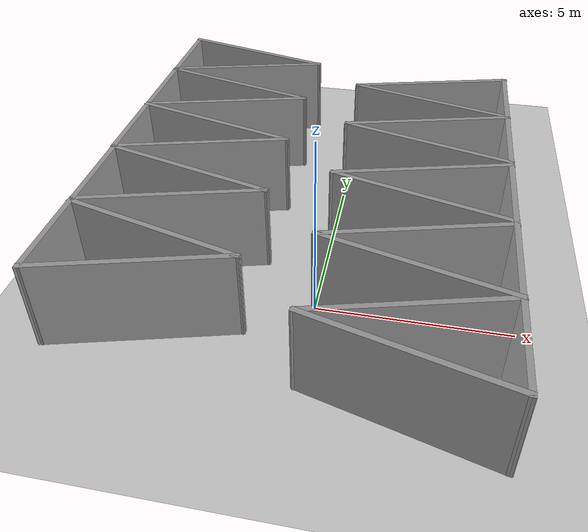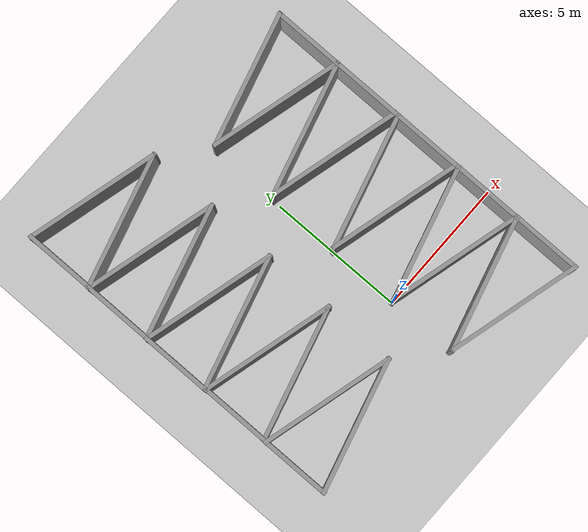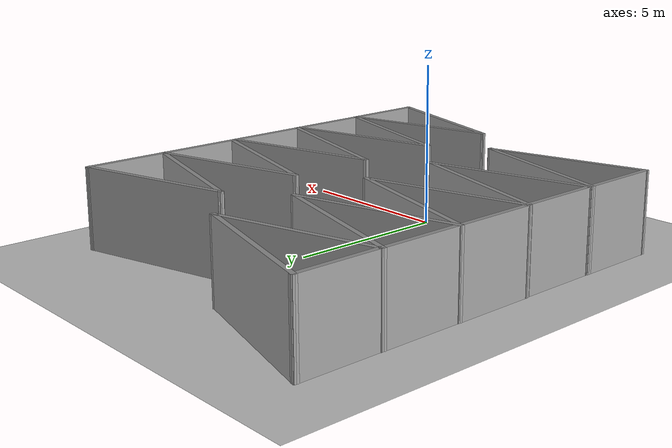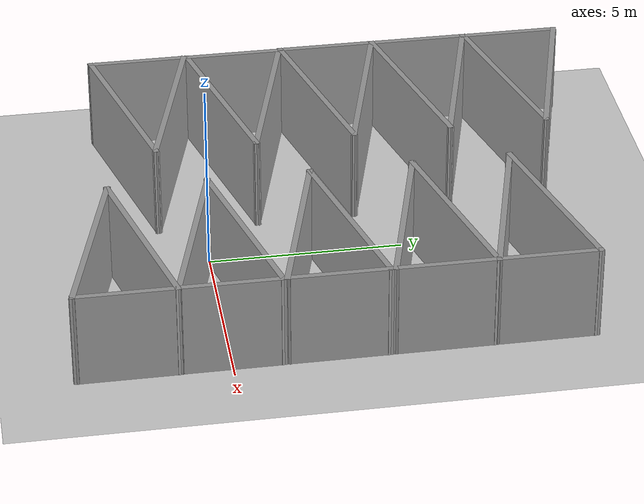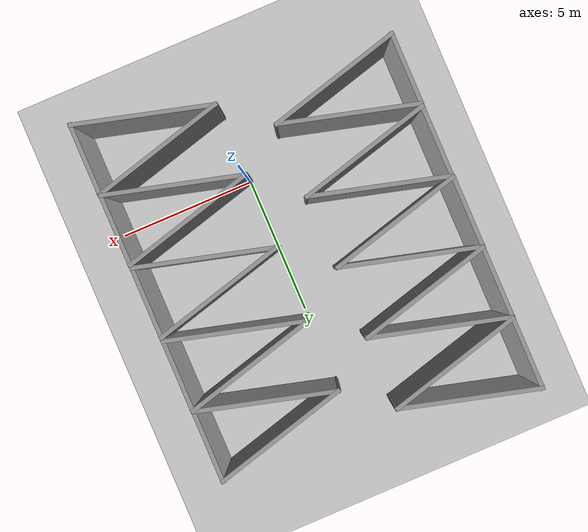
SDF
<sdf version="1.6">
 <world name="default">
  <light name="sun" type="directional">
   <pose>0 0 10 0 -0 0</pose>
   <diffuse>0.8 0.8 0.8 1</diffuse>
   <specular>0.2 0.2 0.2 1</specular>
   <attenuation>
    <range>1000</range>
    <constant>0.9</constant>
    <linear>0.01</linear>
    <quadratic>0.001</quadratic>
   </attenuation>
   <direction>-0.5 0.1 -0.9</direction>
  </light>
  <model name="ground_plane">
   <static>1</static>
   <link name="link">
    <collision name="collision">
     <geometry><plane><normal>0 0 1</normal><size>100 100</size></plane></geometry>
     <surface>
      <contact><collide_bitmask>65535</collide_bitmask></contact>
      <friction><ode><mu>100</mu><mu2>50</mu2></ode></friction>
     </surface>
    </collision>
    <visual name="visual">
     <cast_shadows>0</cast_shadows>
     <geometry><plane><normal>0 0 1</normal><size>100 100</size></plane></geometry>
     <material>
      <script><uri>file://media/materials/scripts/gazebo.material</uri><name>Gazebo/Grey</name></script>
     </material>
    </visual>
   </link>
  </model>
  <gravity>0 0 -9.8</gravity>
  <magnetic_field>6e-06 2.3e-05 -4.2e-05</magnetic_field>
  <atmosphere type="adiabatic"/>
  <physics name="default_physics" default="0" type="ode">
   <max_step_size>0.001</max_step_size>
   <real_time_factor>1</real_time_factor>
   <real_time_update_rate>1000</real_time_update_rate>
  </physics>
  <scene><ambient>0.4 0.4 0.4 1</ambient><background>0.7 0.7 0.7 1</background><shadows>1</shadows></scene>
  <audio><device>default</device></audio>
  <spherical_coordinates>
   <surface_model>EARTH_WGS84</surface_model>
   <latitude_deg>0</latitude_deg>
   <longitude_deg>0</longitude_deg>
   <elevation>0</elevation>
   <heading_deg>0</heading_deg>
  </spherical_coordinates>
  <model name="tri_30deg_5m">
   <pose>2.34237 -0 0 0 -0 0</pose>
   <link name="Wall_46">
    <collision name="Wall_46_Collision">
     <geometry><box><size>5 0.15 2.5</size></box></geometry>
     <pose>0 0 1.25 0 -0 0</pose>
    </collision>
    <visual name="Wall_46_Visual">
     <pose>0 0 1.25 0 -0 0</pose>
     <geometry><box><size>5 0.15 2.5</size></box></geometry>
     <material>
      <script><uri>file://media/materials/scripts/gazebo.material</uri><name>Gazebo/Grey</name></script>
      <ambient>1 1 1 1</ambient>
     </material>
     <meta><layer>0</layer></meta>
    </visual>
    <pose>-0 0.627636 0 0 -0 0.261799</pose>
   </link>
   <link name="Wall_50">
    <collision name="Wall_50_Collision">
     <geometry><box><size>5 0.15 2.5</size></box></geometry>
     <pose>0 0 1.25 0 -0 0</pose>
    </collision>
    <visual name="Wall_50_Visual">
     <pose>0 0 1.25 0 -0 0</pose>
     <geometry><box><size>5 0.15 2.5</size></box></geometry>
     <material>
      <script><uri>file://media/materials/scripts/gazebo.material</uri><name>Gazebo/Grey</name></script>
      <ambient>1 1 1 1</ambient>
     </material>
     <meta><layer>0</layer></meta>
    </visual>
    <pose>-0 -0.627636 0 0 -0 -0.261799</pose>
   </link>
   <link name="Wall_54">
    <collision name="Wall_54_Collision">
     <geometry><box><size>2.66054 0.15 2.5</size></box></geometry>
     <pose>0 0 1.25 0 -0 0</pose>
    </collision>
    <visual name="Wall_54_Visual">
     <pose>0 0 1.25 0 -0 0</pose>
     <geometry><box><size>2.66054 0.15 2.5</size></box></geometry>
     <material>
      <script><uri>file://media/materials/scripts/gazebo.material</uri><name>Gazebo/Grey</name></script>
      <ambient>1 1 1 1</ambient>
     </material>
     <meta><layer>0</layer></meta>
    </visual>
    <pose>2.34237 -0 0 0 -0 -1.5708</pose>
   </link>
   <static>1</static>
  </model>
  <model name="tri_30deg_5m_0">
   <pose>2.33445 2.61578 0 0 -0 0</pose>
   <link name="Wall_46">
    <collision name="Wall_46_Collision">
     <geometry><box><size>5 0.15 2.5</size></box></geometry>
     <pose>0 0 1.25 0 -0 0</pose>
    </collision>
    <visual name="Wall_46_Visual">
     <pose>0 0 1.25 0 -0 0</pose>
     <geometry><box><size>5 0.15 2.5</size></box></geometry>
     <material>
      <script><uri>file://media/materials/scripts/gazebo.material</uri><name>Gazebo/Grey</name></script>
      <ambient>1 1 1 1</ambient>
     </material>
     <meta><layer>0</layer></meta>
    </visual>
    <pose>-0 0.627636 0 0 -0 0.261799</pose>
   </link>
   <link name="Wall_50">
    <collision name="Wall_50_Collision">
     <geometry><box><size>5 0.15 2.5</size></box></geometry>
     <pose>0 0 1.25 0 -0 0</pose>
    </collision>
    <visual name="Wall_50_Visual">
     <pose>0 0 1.25 0 -0 0</pose>
     <geometry><box><size>5 0.15 2.5</size></box></geometry>
     <material>
      <script><uri>file://media/materials/scripts/gazebo.material</uri><name>Gazebo/Grey</name></script>
      <ambient>1 1 1 1</ambient>
     </material>
     <meta><layer>0</layer></meta>
    </visual>
    <pose>-0 -0.627636 0 0 -0 -0.261799</pose>
   </link>
   <link name="Wall_54">
    <collision name="Wall_54_Collision">
     <geometry><box><size>2.66054 0.15 2.5</size></box></geometry>
     <pose>0 0 1.25 0 -0 0</pose>
    </collision>
    <visual name="Wall_54_Visual">
     <pose>0 0 1.25 0 -0 0</pose>
     <geometry><box><size>2.66054 0.15 2.5</size></box></geometry>
     <material>
      <script><uri>file://media/materials/scripts/gazebo.material</uri><name>Gazebo/Grey</name></script>
      <ambient>1 1 1 1</ambient>
     </material>
     <meta><layer>0</layer></meta>
    </visual>
    <pose>2.34237 -0 0 0 -0 -1.5708</pose>
   </link>
   <static>1</static>
  </model>
  <model name="tri_30deg_5m_1">
   <pose>2.33084 5.25986 0 0 -0 0</pose>
   <link name="Wall_46">
    <collision name="Wall_46_Collision">
     <geometry><box><size>5 0.15 2.5</size></box></geometry>
     <pose>0 0 1.25 0 -0 0</pose>
    </collision>
    <visual name="Wall_46_Visual">
     <pose>0 0 1.25 0 -0 0</pose>
     <geometry><box><size>5 0.15 2.5</size></box></geometry>
     <material>
      <script><uri>file://media/materials/scripts/gazebo.material</uri><name>Gazebo/Grey</name></script>
      <ambient>1 1 1 1</ambient>
     </material>
     <meta><layer>0</layer></meta>
    </visual>
    <pose>-0 0.627636 0 0 -0 0.261799</pose>
   </link>
   <link name="Wall_50">
    <collision name="Wall_50_Collision">
     <geometry><box><size>5 0.15 2.5</size></box></geometry>
     <pose>0 0 1.25 0 -0 0</pose>
    </collision>
    <visual name="Wall_50_Visual">
     <pose>0 0 1.25 0 -0 0</pose>
     <geometry><box><size>5 0.15 2.5</size></box></geometry>
     <material>
      <script><uri>file://media/materials/scripts/gazebo.material</uri><name>Gazebo/Grey</name></script>
      <ambient>1 1 1 1</ambient>
     </material>
     <meta><layer>0</layer></meta>
    </visual>
    <pose>-0 -0.627636 0 0 -0 -0.261799</pose>
   </link>
   <link name="Wall_54">
    <collision name="Wall_54_Collision">
     <geometry><box><size>2.66054 0.15 2.5</size></box></geometry>
     <pose>0 0 1.25 0 -0 0</pose>
    </collision>
    <visual name="Wall_54_Visual">
     <pose>0 0 1.25 0 -0 0</pose>
     <geometry><box><size>2.66054 0.15 2.5</size></box></geometry>
     <material>
      <script><uri>file://media/materials/scripts/gazebo.material</uri><name>Gazebo/Grey</name></script>
      <ambient>1 1 1 1</ambient>
     </material>
     <meta><layer>0</layer></meta>
    </visual>
    <pose>2.34237 -0 0 0 -0 -1.5708</pose>
   </link>
   <static>1</static>
  </model>
  <model name="tri_30deg_5m_2">
   <pose>2.32734 7.79144 0 0 -0 0</pose>
   <link name="Wall_46">
    <collision name="Wall_46_Collision">
     <geometry><box><size>5 0.15 2.5</size></box></geometry>
     <pose>0 0 1.25 0 -0 0</pose>
    </collision>
    <visual name="Wall_46_Visual">
     <pose>0 0 1.25 0 -0 0</pose>
     <geometry><box><size>5 0.15 2.5</size></box></geometry>
     <material>
      <script><uri>file://media/materials/scripts/gazebo.material</uri><name>Gazebo/Grey</name></script>
      <ambient>1 1 1 1</ambient>
     </material>
     <meta><layer>0</layer></meta>
    </visual>
    <pose>-0 0.627636 0 0 -0 0.261799</pose>
   </link>
   <link name="Wall_50">
    <collision name="Wall_50_Collision">
     <geometry><box><size>5 0.15 2.5</size></box></geometry>
     <pose>0 0 1.25 0 -0 0</pose>
    </collision>
    <visual name="Wall_50_Visual">
     <pose>0 0 1.25 0 -0 0</pose>
     <geometry><box><size>5 0.15 2.5</size></box></geometry>
     <material>
      <script><uri>file://media/materials/scripts/gazebo.material</uri><name>Gazebo/Grey</name></script>
      <ambient>1 1 1 1</ambient>
     </material>
     <meta><layer>0</layer></meta>
    </visual>
    <pose>-0 -0.627636 0 0 -0 -0.261799</pose>
   </link>
   <link name="Wall_54">
    <collision name="Wall_54_Collision">
     <geometry><box><size>2.66054 0.15 2.5</size></box></geometry>
     <pose>0 0 1.25 0 -0 0</pose>
    </collision>
    <visual name="Wall_54_Visual">
     <pose>0 0 1.25 0 -0 0</pose>
     <geometry><box><size>2.66054 0.15 2.5</size></box></geometry>
     <material>
      <script><uri>file://media/materials/scripts/gazebo.material</uri><name>Gazebo/Grey</name></script>
      <ambient>1 1 1 1</ambient>
     </material>
     <meta><layer>0</layer></meta>
    </visual>
    <pose>2.34237 -0 0 0 -0 -1.5708</pose>
   </link>
   <static>1</static>
  </model>
  <model name="tri_30deg_5m_3">
   <pose>-3.93411 9.10185 0 0 -0 3.14159</pose>
   <link name="Wall_46">
    <collision name="Wall_46_Collision">
     <geometry><box><size>5 0.15 2.5</size></box></geometry>
     <pose>0 0 1.25 0 -0 0</pose>
    </collision>
    <visual name="Wall_46_Visual">
     <pose>0 0 1.25 0 -0 0</pose>
     <geometry><box><size>5 0.15 2.5</size></box></geometry>
     <material>
      <script><uri>file://media/materials/scripts/gazebo.material</uri><name>Gazebo/Grey</name></script>
      <ambient>1 1 1 1</ambient>
     </material>
     <meta><layer>0</layer></meta>
    </visual>
    <pose>-0 0.627636 0 0 -0 0.261799</pose>
   </link>
   <link name="Wall_50">
    <collision name="Wall_50_Collision">
     <geometry><box><size>5 0.15 2.5</size></box></geometry>
     <pose>0 0 1.25 0 -0 0</pose>
    </collision>
    <visual name="Wall_50_Visual">
     <pose>0 0 1.25 0 -0 0</pose>
     <geometry><box><size>5 0.15 2.5</size></box></geometry>
     <material>
      <script><uri>file://media/materials/scripts/gazebo.material</uri><name>Gazebo/Grey</name></script>
      <ambient>1 1 1 1</ambient>
     </material>
     <meta><layer>0</layer></meta>
    </visual>
    <pose>-0 -0.627636 0 0 -0 -0.261799</pose>
   </link>
   <link name="Wall_54">
    <collision name="Wall_54_Collision">
     <geometry><box><size>2.66054 0.15 2.5</size></box></geometry>
     <pose>0 0 1.25 0 -0 0</pose>
    </collision>
    <visual name="Wall_54_Visual">
     <pose>0 0 1.25 0 -0 0</pose>
     <geometry><box><size>2.66054 0.15 2.5</size></box></geometry>
     <material>
      <script><uri>file://media/materials/scripts/gazebo.material</uri><name>Gazebo/Grey</name></script>
      <ambient>1 1 1 1</ambient>
     </material>
     <meta><layer>0</layer></meta>
    </visual>
    <pose>2.34237 -0 0 0 -0 -1.5708</pose>
   </link>
   <static>1</static>
  </model>
  <model name="tri_30deg_5m_3_clone">
   <pose>-3.94498 6.55235 0 0 -0 3.14159</pose>
   <link name="Wall_46">
    <collision name="Wall_46_Collision">
     <geometry><box><size>5 0.15 2.5</size></box></geometry>
     <pose>0 0 1.25 0 -0 0</pose>
    </collision>
    <visual name="Wall_46_Visual">
     <pose>0 0 1.25 0 -0 0</pose>
     <geometry><box><size>5 0.15 2.5</size></box></geometry>
     <material>
      <script><uri>file://media/materials/scripts/gazebo.material</uri><name>Gazebo/Grey</name></script>
      <ambient>1 1 1 1</ambient>
     </material>
     <meta><layer>0</layer></meta>
    </visual>
    <pose>-0 0.627636 0 0 -0 0.261799</pose>
   </link>
   <link name="Wall_50">
    <collision name="Wall_50_Collision">
     <geometry><box><size>5 0.15 2.5</size></box></geometry>
     <pose>0 0 1.25 0 -0 0</pose>
    </collision>
    <visual name="Wall_50_Visual">
     <pose>0 0 1.25 0 -0 0</pose>
     <geometry><box><size>5 0.15 2.5</size></box></geometry>
     <material>
      <script><uri>file://media/materials/scripts/gazebo.material</uri><name>Gazebo/Grey</name></script>
      <ambient>1 1 1 1</ambient>
     </material>
     <meta><layer>0</layer></meta>
    </visual>
    <pose>-0 -0.627636 0 0 -0 -0.261799</pose>
   </link>
   <link name="Wall_54">
    <collision name="Wall_54_Collision">
     <geometry><box><size>2.66054 0.15 2.5</size></box></geometry>
     <pose>0 0 1.25 0 -0 0</pose>
    </collision>
    <visual name="Wall_54_Visual">
     <pose>0 0 1.25 0 -0 0</pose>
     <geometry><box><size>2.66054 0.15 2.5</size></box></geometry>
     <material>
      <script><uri>file://media/materials/scripts/gazebo.material</uri><name>Gazebo/Grey</name></script>
      <ambient>1 1 1 1</ambient>
     </material>
     <meta><layer>0</layer></meta>
    </visual>
    <pose>2.34237 -0 0 0 -0 -1.5708</pose>
   </link>
   <static>1</static>
  </model>
  <model name="tri_30deg_5m_3_clone_0">
   <pose>-3.95527 4.0202 0 0 -0 3.14159</pose>
   <link name="Wall_46">
    <collision name="Wall_46_Collision">
     <geometry><box><size>5 0.15 2.5</size></box></geometry>
     <pose>0 0 1.25 0 -0 0</pose>
    </collision>
    <visual name="Wall_46_Visual">
     <pose>0 0 1.25 0 -0 0</pose>
     <geometry><box><size>5 0.15 2.5</size></box></geometry>
     <material>
      <script><uri>file://media/materials/scripts/gazebo.material</uri><name>Gazebo/Grey</name></script>
      <ambient>1 1 1 1</ambient>
     </material>
     <meta><layer>0</layer></meta>
    </visual>
    <pose>-0 0.627636 0 0 -0 0.261799</pose>
   </link>
   <link name="Wall_50">
    <collision name="Wall_50_Collision">
     <geometry><box><size>5 0.15 2.5</size></box></geometry>
     <pose>0 0 1.25 0 -0 0</pose>
    </collision>
    <visual name="Wall_50_Visual">
     <pose>0 0 1.25 0 -0 0</pose>
     <geometry><box><size>5 0.15 2.5</size></box></geometry>
     <material>
      <script><uri>file://media/materials/scripts/gazebo.material</uri><name>Gazebo/Grey</name></script>
      <ambient>1 1 1 1</ambient>
     </material>
     <meta><layer>0</layer></meta>
    </visual>
    <pose>-0 -0.627636 0 0 -0 -0.261799</pose>
   </link>
   <link name="Wall_54">
    <collision name="Wall_54_Collision">
     <geometry><box><size>2.66054 0.15 2.5</size></box></geometry>
     <pose>0 0 1.25 0 -0 0</pose>
    </collision>
    <visual name="Wall_54_Visual">
     <pose>0 0 1.25 0 -0 0</pose>
     <geometry><box><size>2.66054 0.15 2.5</size></box></geometry>
     <material>
      <script><uri>file://media/materials/scripts/gazebo.material</uri><name>Gazebo/Grey</name></script>
      <ambient>1 1 1 1</ambient>
     </material>
     <meta><layer>0</layer></meta>
    </visual>
    <pose>2.34237 -0 0 0 -0 -1.5708</pose>
   </link>
   <static>1</static>
  </model>
  <model name="tri_30deg_5m_3_clone_1">
   <pose>-3.93269 1.46388 0 0 -0 3.14159</pose>
   <link name="Wall_46">
    <collision name="Wall_46_Collision">
     <geometry><box><size>5 0.15 2.5</size></box></geometry>
     <pose>0 0 1.25 0 -0 0</pose>
    </collision>
    <visual name="Wall_46_Visual">
     <pose>0 0 1.25 0 -0 0</pose>
     <geometry><box><size>5 0.15 2.5</size></box></geometry>
     <material>
      <script><uri>file://media/materials/scripts/gazebo.material</uri><name>Gazebo/Grey</name></script>
      <ambient>1 1 1 1</ambient>
     </material>
     <meta><layer>0</layer></meta>
    </visual>
    <pose>-0 0.627636 0 0 -0 0.261799</pose>
   </link>
   <link name="Wall_50">
    <collision name="Wall_50_Collision">
     <geometry><box><size>5 0.15 2.5</size></box></geometry>
     <pose>0 0 1.25 0 -0 0</pose>
    </collision>
    <visual name="Wall_50_Visual">
     <pose>0 0 1.25 0 -0 0</pose>
     <geometry><box><size>5 0.15 2.5</size></box></geometry>
     <material>
      <script><uri>file://media/materials/scripts/gazebo.material</uri><name>Gazebo/Grey</name></script>
      <ambient>1 1 1 1</ambient>
     </material>
     <meta><layer>0</layer></meta>
    </visual>
    <pose>-0 -0.627636 0 0 -0 -0.261799</pose>
   </link>
   <link name="Wall_54">
    <collision name="Wall_54_Collision">
     <geometry><box><size>2.66054 0.15 2.5</size></box></geometry>
     <pose>0 0 1.25 0 -0 0</pose>
    </collision>
    <visual name="Wall_54_Visual">
     <pose>0 0 1.25 0 -0 0</pose>
     <geometry><box><size>2.66054 0.15 2.5</size></box></geometry>
     <material>
      <script><uri>file://media/materials/scripts/gazebo.material</uri><name>Gazebo/Grey</name></script>
      <ambient>1 1 1 1</ambient>
     </material>
     <meta><layer>0</layer></meta>
    </visual>
    <pose>2.34237 -0 0 0 -0 -1.5708</pose>
   </link>
   <static>1</static>
  </model>
  <model name="tri_30deg_5m_3_clone_1_clone">
   <pose>-3.94492 -1.13998 0 0 -0 3.14159</pose>
   <link name="Wall_46">
    <collision name="Wall_46_Collision">
     <geometry><box><size>5 0.15 2.5</size></box></geometry>
     <pose>0 0 1.25 0 -0 0</pose>
    </collision>
    <visual name="Wall_46_Visual">
     <pose>0 0 1.25 0 -0 0</pose>
     <geometry><box><size>5 0.15 2.5</size></box></geometry>
     <material>
      <script><uri>file://media/materials/scripts/gazebo.material</uri><name>Gazebo/Grey</name></script>
      <ambient>1 1 1 1</ambient>
     </material>
     <meta><layer>0</layer></meta>
    </visual>
    <pose>-0 0.627636 0 0 -0 0.261799</pose>
   </link>
   <link name="Wall_50">
    <collision name="Wall_50_Collision">
     <geometry><box><size>5 0.15 2.5</size></box></geometry>
     <pose>0 0 1.25 0 -0 0</pose>
    </collision>
    <visual name="Wall_50_Visual">
     <pose>0 0 1.25 0 -0 0</pose>
     <geometry><box><size>5 0.15 2.5</size></box></geometry>
     <material>
      <script><uri>file://media/materials/scripts/gazebo.material</uri><name>Gazebo/Grey</name></script>
      <ambient>1 1 1 1</ambient>
     </material>
     <meta><layer>0</layer></meta>
    </visual>
    <pose>-0 -0.627636 0 0 -0 -0.261799</pose>
   </link>
   <link name="Wall_54">
    <collision name="Wall_54_Collision">
     <geometry><box><size>2.66054 0.15 2.5</size></box></geometry>
     <pose>0 0 1.25 0 -0 0</pose>
    </collision>
    <visual name="Wall_54_Visual">
     <pose>0 0 1.25 0 -0 0</pose>
     <geometry><box><size>2.66054 0.15 2.5</size></box></geometry>
     <material>
      <script><uri>file://media/materials/scripts/gazebo.material</uri><name>Gazebo/Grey</name></script>
      <ambient>1 1 1 1</ambient>
     </material>
     <meta><layer>0</layer></meta>
    </visual>
    <pose>2.34237 -0 0 0 -0 -1.5708</pose>
   </link>
   <static>1</static>
  </model>
  <model name="tri_30deg_5m_clone">
   <pose>2.35343 -2.53667 0 0 -0 0</pose>
   <link name="Wall_46">
    <collision name="Wall_46_Collision">
     <geometry><box><size>5 0.15 2.5</size></box></geometry>
     <pose>0 0 1.25 0 -0 0</pose>
    </collision>
    <visual name="Wall_46_Visual">
     <pose>0 0 1.25 0 -0 0</pose>
     <geometry><box><size>5 0.15 2.5</size></box></geometry>
     <material>
      <script><uri>file://media/materials/scripts/gazebo.material</uri><name>Gazebo/Grey</name></script>
      <ambient>1 1 1 1</ambient>
     </material>
     <meta><layer>0</layer></meta>
    </visual>
    <pose>-0 0.627636 0 0 -0 0.261799</pose>
   </link>
   <link name="Wall_50">
    <collision name="Wall_50_Collision">
     <geometry><box><size>5 0.15 2.5</size></box></geometry>
     <pose>0 0 1.25 0 -0 0</pose>
    </collision>
    <visual name="Wall_50_Visual">
     <pose>0 0 1.25 0 -0 0</pose>
     <geometry><box><size>5 0.15 2.5</size></box></geometry>
     <material>
      <script><uri>file://media/materials/scripts/gazebo.material</uri><name>Gazebo/Grey</name></script>
      <ambient>1 1 1 1</ambient>
     </material>
     <meta><layer>0</layer></meta>
    </visual>
    <pose>-0 -0.627636 0 0 -0 -0.261799</pose>
   </link>
   <link name="Wall_54">
    <collision name="Wall_54_Collision">
     <geometry><box><size>2.66054 0.15 2.5</size></box></geometry>
     <pose>0 0 1.25 0 -0 0</pose>
    </collision>
    <visual name="Wall_54_Visual">
     <pose>0 0 1.25 0 -0 0</pose>
     <geometry><box><size>2.66054 0.15 2.5</size></box></geometry>
     <material>
      <script><uri>file://media/materials/scripts/gazebo.material</uri><name>Gazebo/Grey</name></script>
      <ambient>1 1 1 1</ambient>
     </material>
     <meta><layer>0</layer></meta>
    </visual>
    <pose>2.34237 -0 0 0 -0 -1.5708</pose>
   </link>
   <static>1</static>
  </model>
 </world>
</sdf>
